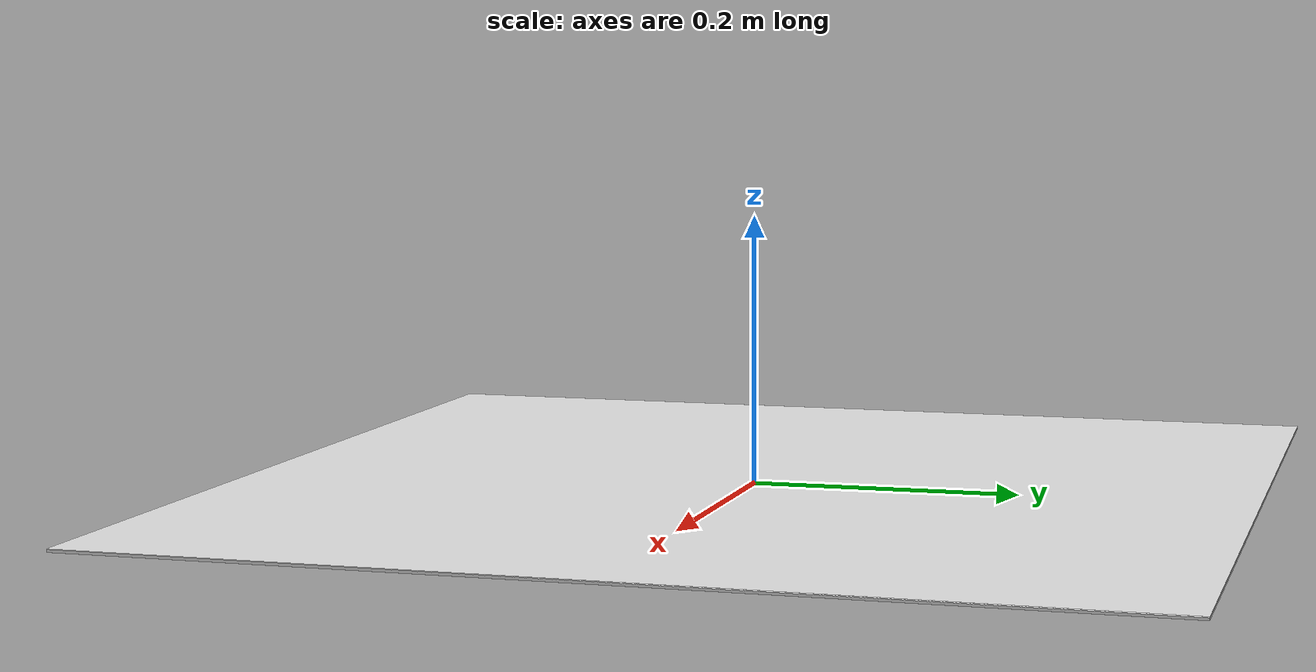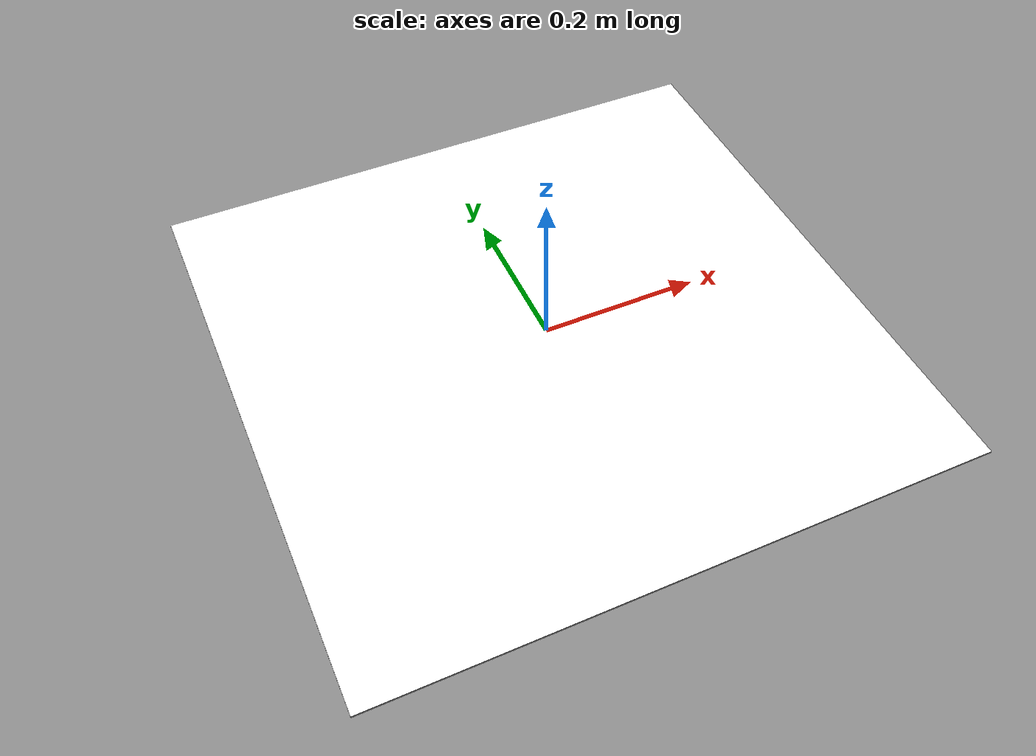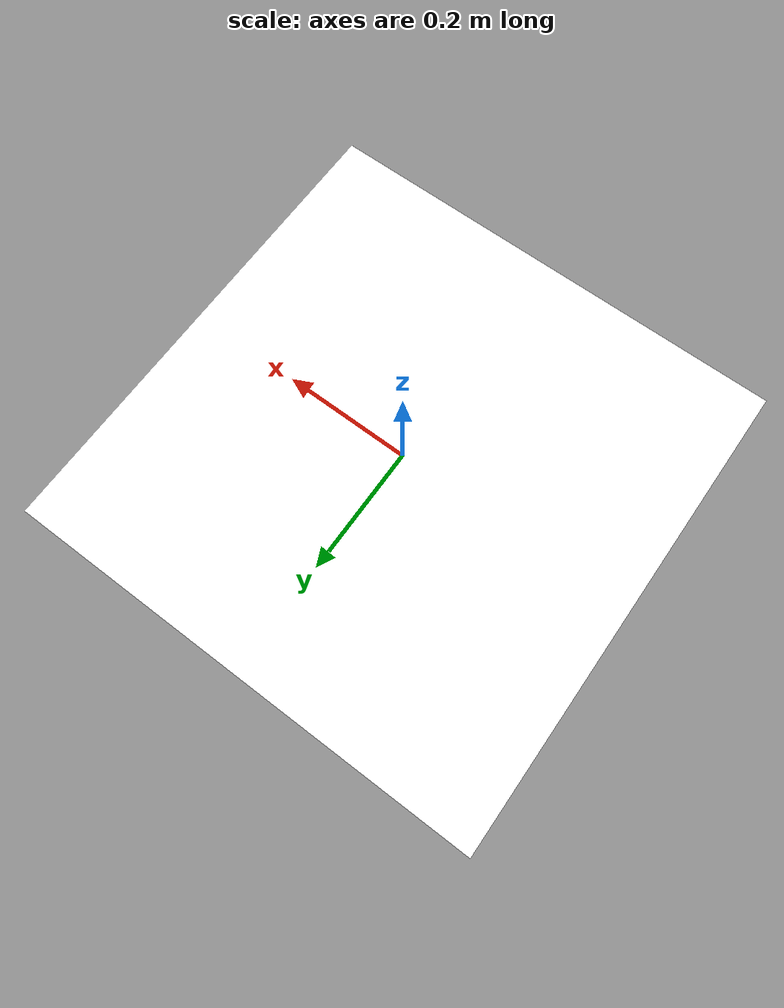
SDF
<?xml version="1.0" encoding="UTF-8"?>
<sdf version="1.9">
  <model name="land_point_1">
    <static>true</static>
    <link name="base">
      <collision name="collision">
        <pose>0 0 0.001 0 0 0</pose>
        <geometry>
          <box>
            <size>0.75 0.75 0.002</size>
          </box>
        </geometry>
      </collision>
      <visual name="pad">
        <pose>0 0 0.001 0 0 0</pose>
        <geometry>
          <box>
            <size>0.75 0.75 0.002</size>
          </box>
        </geometry>
        <material>
          <ambient>0.6 0.6 0.6 1</ambient>
          <diffuse>0.6 0.6 0.6 1</diffuse>
          <specular>0.1 0.1 0.1 1</specular>
        </material>
      </visual>
      <visual name="marking">
        <pose>0 0 0.0021 0 0 0</pose>
        <cast_shadows>false</cast_shadows>
        <geometry>
          <plane>
            <normal>0 0 1</normal>
            <size>0.75 0.75</size>
          </plane>
        </geometry>
        <material>
          <diffuse>1 1 1 1</diffuse>
          <specular>0.1 0.1 0.1 1</specular>
          <pbr>
            <metal>
              <albedo_map>model://land_point_1/materials/textures/land_point_1.png</albedo_map>
            </metal>
          </pbr>
        </material>
      </visual>
    </link>
  </model>
</sdf>
